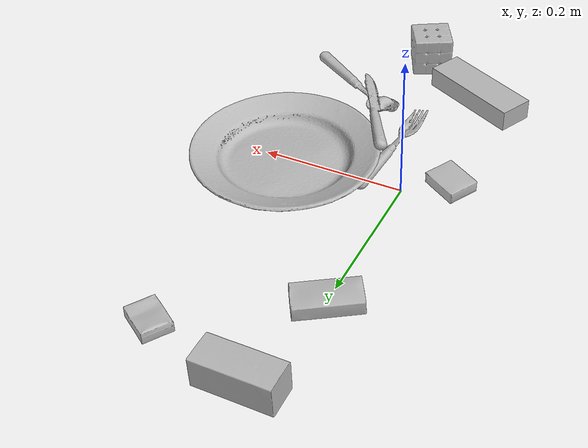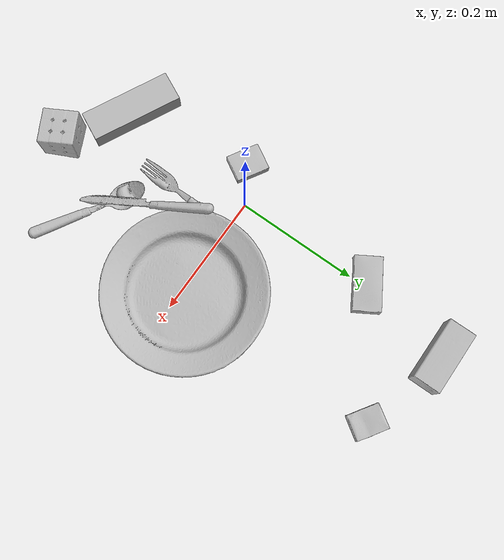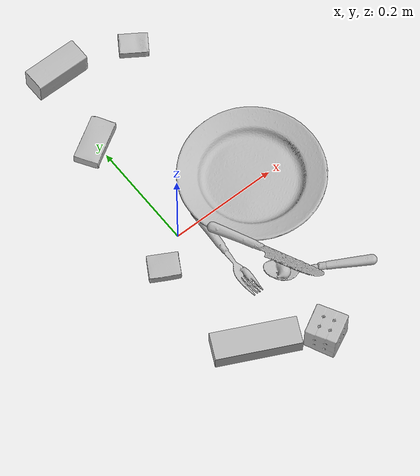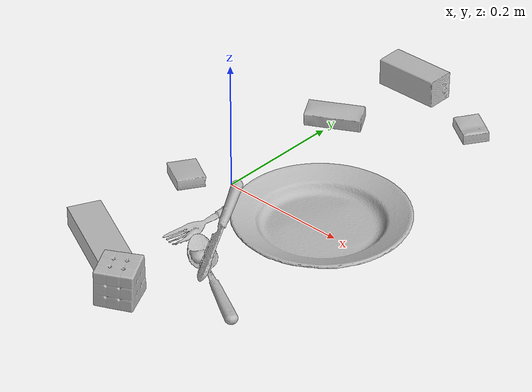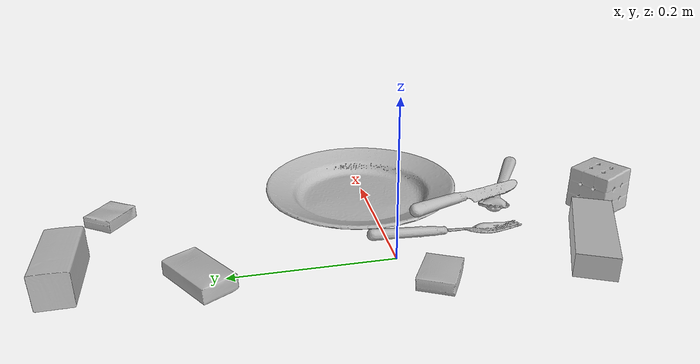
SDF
<sdf version="1.4">
  <world name="default">
    <light name="light1" type="point">
      <pose>0 0 1 0 0 0</pose>
      <diffuse>3 3 3 1</diffuse>
      <specular>3 3 3 1</specular>
    </light>
    <light name="light2" type="point">
      <pose>0 0.5 2 0 0 0</pose>
      <diffuse>1 1 1 1</diffuse>
      <specular>1 1 1 1</specular>
    </light>
    <light name="light3" type="point">
      <pose>0 0.5 2 0 0 0</pose>
      <diffuse>3 3 3 1</diffuse>
      <specular>3 3 3 1</specular>
    </light>
    <scene>
      <ambient>0.7 0.7 0.7</ambient>
    </scene>
    <model name="box11">
      <link name="link_box11">
        <collision name="default">
          <geometry>
            <mesh>
              <uri>model://pudding_box/collision_meshes/collision.obj</uri>
              <scale>0.5 0.5 0.5</scale>
            </mesh>
          </geometry>
          <surface>
            <friction>
              <ode>
                <mu>0.5</mu>
                <mu2>0.5</mu2>
              </ode>
            </friction>
          <contact>
        <ode>
            <max_vel>0</max_vel>
            <min_depth>0.0001</min_depth>
            <kp>1e8</kp>
        </ode>
    </contact></surface>
        </collision>
        <visual name="default">
          <geometry>
            <mesh>
              <uri>model://pudding_box/visual_meshes/visual.dae</uri>
              <scale>0.5 0.5 0.5</scale>
            </mesh>
          </geometry>
        </visual>
        <inertial>
          <mass>0.05641884729266167</mass>
          <pose>0.00024474109522998333 0.000403394311433658 -0.00025944141088984907 0.005213101771016666 -0.006603799659696515 0.020079828883224148</pose>
          <inertia>
            <ixx>1.5944652e-05</ixx>
            <iyy>1.0727675e-05</iyy>
            <izz>2.3546443e-05</izz>
            <ixy>0</ixy>
            <ixz>0</ixz>
            <iyz>0</iyz>
          </inertia>
        </inertial>
      </link>
      <pose>-0.057162683457136154 -0.0347733348608017 0.009862901642918587 0.022348634602566288 -0.011391211171166421 -2.096380508581624</pose>
    </model>
    <model name="box12">
      <link name="link_box12">
        <collision name="default">
          <geometry>
            <mesh>
              <uri>model://wood_block/collision_meshes/collision.obj</uri>
              <scale>0.5 0.5 0.5</scale>
            </mesh>
          </geometry>
          <surface>
            <friction>
              <ode>
                <mu>0.5</mu>
                <mu2>0.5</mu2>
              </ode>
            </friction>
          <contact>
        <ode>
            <max_vel>0</max_vel>
            <min_depth>0.0001</min_depth>
            <kp>1e8</kp>
        </ode>
    </contact></surface>
        </collision>
        <visual name="default">
          <geometry>
            <mesh>
              <uri>model://wood_block/visual_meshes/visual.dae</uri>
              <scale>0.5 0.5 0.5</scale>
            </mesh>
          </geometry>
        </visual>
        <inertial>
          <mass>0.1445801854133606</mass>
          <pose>-2.906657982748584e-06 -0.000285404734313488 0.00013204291462898254 -0.052208162951624955 -0.0051926954609686745 -0.006861377578377277</pose>
          <inertia>
            <ixx>4.836754e-05</ixx>
            <iyy>0.0001527931</iyy>
            <izz>0.00015222155</izz>
            <ixy>0</ixy>
            <ixz>0</ixz>
            <iyz>0</iyz>
          </inertia>
        </inertial>
      </link>
      <pose>0.027749139815568924 0.3779677450656891 0.022629259154200554 -0.005208541998128924 0.005718688295919271 0.004763820710444733</pose>
    </model>
    <model name="box13">
      <link name="link_box13">
        <collision name="default">
          <geometry>
            <mesh>
              <uri>model://sugar_box/collision_meshes/collision.obj</uri>
              <scale>0.5 0.5 0.5</scale>
            </mesh>
          </geometry>
          <surface>
            <friction>
              <ode>
                <mu>0.5</mu>
                <mu2>0.5</mu2>
              </ode>
            </friction>
          <contact>
        <ode>
            <max_vel>0</max_vel>
            <min_depth>0.0001</min_depth>
            <kp>1e8</kp>
        </ode>
    </contact></surface>
        </collision>
        <visual name="default">
          <geometry>
            <mesh>
              <uri>model://sugar_box/visual_meshes/visual.dae</uri>
              <scale>0.5 0.5 0.5</scale>
            </mesh>
          </geometry>
        </visual>
        <inertial>
          <mass>0.1187032163143158</mass>
          <pose>0.0005171863595023751 1.924554817378521e-05 -0.00018182402709499002 -0.0004046259512710581 0.0010506635216588768 0.002615378556274426</pose>
          <inertia>
            <ixx>2.4725794e-05</ixx>
            <iyy>7.991886e-05</iyy>
            <izz>9.567241e-05</izz>
            <ixy>0</ixy>
            <ixz>0</ixz>
            <iyz>0</iyz>
          </inertia>
        </inertial>
      </link>
      <pose>-0.0026438806671649218 0.22820059955120087 0.011399303562939167 0.0007755870134352239 -0.023432680814154817 -2.5996004404059216</pose>
    </model>
    <model name="box21">
      <link name="link_box21">
        <collision name="default">
          <geometry>
            <mesh>
              <uri>model://jenga/collision_meshes/collision.obj</uri>
              <scale>1.0 1.0 1.0</scale>
            </mesh>
          </geometry>
          <surface>
            <friction>
              <ode>
                <mu>0.5</mu>
                <mu2>0.5</mu2>
              </ode>
            </friction>
          <contact>
        <ode>
            <max_vel>0</max_vel>
            <min_depth>0.0001</min_depth>
            <kp>1e8</kp>
        </ode>
    </contact></surface>
        </collision>
        <visual name="default">
          <geometry>
            <mesh>
              <uri>model://jenga/visual_meshes/visual.dae</uri>
              <scale>1.0 1.0 1.0</scale>
            </mesh>
          </geometry>
        </visual>
        <inertial>
          <mass>0.20898528397083282</mass>
          <pose>-2.502855807051674e-07 -0.00010250010382151231 -4.092339804628864e-05 0.0 -7.342154049184251e-07 0.0</pose>
          <inertia>
            <ixx>5.7831294e-05</ixx>
            <iyy>0.0003918633</iyy>
            <izz>0.00041834736</izz>
            <ixy>0</ixy>
            <ixz>0</ixz>
            <iyz>0</iyz>
          </inertia>
        </inertial>
      </link>
      <pose>-0.022916341200470924 -0.2408991903066635 0.014999998733401299 1.3086436689622963e-09 2.0841869210462837e-09 2.6859910264099405</pose>
    </model>
    <model name="box22">
      <link name="link_box22">
        <collision name="default">
          <geometry>
            <mesh>
              <uri>model://rubiks_cube/collision_meshes/collision.obj</uri>
              <scale>1.0 1.0 1.0</scale>
            </mesh>
          </geometry>
          <surface>
            <friction>
              <ode>
                <mu>0.5</mu>
                <mu2>0.5</mu2>
              </ode>
            </friction>
          <contact>
        <ode>
            <max_vel>0</max_vel>
            <min_depth>0.0001</min_depth>
            <kp>1e8</kp>
        </ode>
    </contact></surface>
        </collision>
        <visual name="default">
          <geometry>
            <mesh>
              <uri>model://rubiks_cube/visual_meshes/visual.dae</uri>
              <scale>1.0 1.0 1.0</scale>
            </mesh>
          </geometry>
        </visual>
        <inertial>
          <mass>0.28698527812957764</mass>
          <pose>2.6721041649580002e-05 5.2569666877388954e-05 -7.2643156272533815e-06 -0.05467256881712973 -0.09813902151902686 -0.034455808755049874</pose>
          <inertia>
            <ixx>0.00015857864</ixx>
            <iyy>0.00015783912</iyy>
            <izz>0.00015989273</izz>
            <ixy>0</ixy>
            <ixz>0</ixz>
            <iyz>0</iyz>
          </inertia>
        </inertial>
      </link>
      <pose>0.07761682569980621 -0.30235645174980164 0.028678933158516884 -4.3426945518712235e-06 -1.7413100666557162e-06 2.0622815111454496</pose>
    </model>
    <model name="box23">
      <link name="link_box23">
        <collision name="default">
          <geometry>
            <mesh>
              <uri>model://cracker_box/collision_meshes/collision.obj</uri>
              <scale>0.25 0.25 0.25</scale>
            </mesh>
          </geometry>
          <surface>
            <friction>
              <ode>
                <mu>0.5</mu>
                <mu2>0.5</mu2>
              </ode>
            </friction>
          <contact>
        <ode>
            <max_vel>0</max_vel>
            <min_depth>0.0001</min_depth>
            <kp>1e8</kp>
        </ode>
    </contact></surface>
        </collision>
        <visual name="default">
          <geometry>
            <mesh>
              <uri>model://cracker_box/visual_meshes/visual.dae</uri>
              <scale>0.25 0.25 0.25</scale>
            </mesh>
          </geometry>
        </visual>
        <inertial>
          <mass>0.04468085244297981</mass>
          <pose>0.00023660414444748312 6.358561222441494e-05 -0.0004257383698131889 -0.0003162076226327385 -0.011106488669128663 0.0025467943033026423</pose>
          <inertia>
            <ixx>7.10301e-06</ixx>
            <iyy>1.1728463e-05</iyy>
            <izz>1.6737597e-05</izz>
            <ixy>0</ixy>
            <ixz>0</ixz>
            <iyz>0</iyz>
          </inertia>
        </inertial>
      </link>
      <pose>0.16897469758987427 0.3410801291465759 0.009096025489270687 -0.014050257012534852 -0.005016834626121049 2.5568941698209984</pose>
    </model>
    <model name="plate1">
      <link name="link_plate1">
        <collision name="default">
          <geometry>
            <mesh>
              <uri>model://plate/collision_meshes/collision.obj</uri>
              <scale>1.0 1.0 1.0</scale>
            </mesh>
          </geometry>
          <surface>
            <friction>
              <ode>
                <mu>0.5</mu>
                <mu2>0.5</mu2>
              </ode>
            </friction>
          <contact>
        <ode>
            <max_vel>0</max_vel>
            <min_depth>0.0001</min_depth>
            <kp>1e8</kp>
        </ode>
    </contact></surface>
        </collision>
        <visual name="default">
          <geometry>
            <mesh>
              <uri>model://plate/visual_meshes/visual.dae</uri>
              <scale>1.0 1.0 1.0</scale>
            </mesh>
          </geometry>
        </visual>
        <inertial>
          <mass>0.20184239745140076</mass>
          <pose>-0.0006044648471288383 0.00027825962752103806 -0.0010561983799561858 0.0022188105697194356 -0.003225466439192432 0.4526020757977656</pose>
          <inertia>
            <ixx>0.00094422296</ixx>
            <iyy>0.00093519164</iyy>
            <izz>0.0018467589</izz>
            <ixy>0</ixy>
            <ixz>0</ixz>
            <iyz>0</iyz>
          </inertia>
        </inertial>
      </link>
      <pose>0.1684947907924652 0.00764953950420022 0.013733004219830036 -7.618007914444629e-07 -3.360490831180868e-06 -2.099907913282408</pose>
    </model>
    <model name="silverware1">
      <link name="link_silverware1">
        <collision name="default">
          <geometry>
            <mesh>
              <uri>model://fork/collision_meshes/collision.obj</uri>
              <scale>1.0 1.0 1.0</scale>
            </mesh>
          </geometry>
          <surface>
            <friction>
              <ode>
                <mu>0.5</mu>
                <mu2>0.5</mu2>
              </ode>
            </friction>
          <contact>
        <ode>
            <max_vel>0</max_vel>
            <min_depth>0.0001</min_depth>
            <kp>1e8</kp>
        </ode>
    </contact></surface>
        </collision>
        <visual name="default">
          <geometry>
            <mesh>
              <uri>model://fork/visual_meshes/visual.dae</uri>
              <scale>1.0 1.0 1.0</scale>
            </mesh>
          </geometry>
        </visual>
        <inertial>
          <mass>0.03151825815439224</mass>
          <pose>-0.029570046812295914 0.00046588233090005815 0.0003218861820641905 -0.013550990610422763 -0.010977834578584837 0.014453900606944525</pose>
          <inertia>
            <ixx>1.1048933e-06</ixx>
            <iyy>8.2285114e-05</iyy>
            <izz>8.2779305e-05</izz>
            <ixy>0</ixy>
            <ixz>0</ixz>
            <iyz>0</iyz>
          </inertia>
        </inertial>
      </link>
      <pose>0.04469399154186249 -0.07389622926712036 0.005678873043507338 -0.17200171300278552 0.02624474524754963 -1.644108369048154</pose>
    </model>
    <model name="silverware2">
      <link name="link_silverware2">
        <collision name="default">
          <geometry>
            <mesh>
              <uri>model://spoon/collision_meshes/collision.obj</uri>
              <scale>1.0 1.0 1.0</scale>
            </mesh>
          </geometry>
          <surface>
            <friction>
              <ode>
                <mu>0.5</mu>
                <mu2>0.5</mu2>
              </ode>
            </friction>
          <contact>
        <ode>
            <max_vel>0</max_vel>
            <min_depth>0.0001</min_depth>
            <kp>1e8</kp>
        </ode>
    </contact></surface>
        </collision>
        <visual name="default">
          <geometry>
            <mesh>
              <uri>model://spoon/visual_meshes/visual.dae</uri>
              <scale>1.0 1.0 1.0</scale>
            </mesh>
          </geometry>
        </visual>
        <inertial>
          <mass>0.04083608463406563</mass>
          <pose>-0.005526324734091759 -0.001603417913429439 -0.0007271658978424966 0.03521537575369321 -0.03906582415196765 0.006150608891198343</pose>
          <inertia>
            <ixx>2.2713682e-06</ixx>
            <iyy>0.0001553799</iyy>
            <izz>0.0001565001</izz>
            <ixy>0</ixy>
            <ixz>0</ixz>
            <iyz>0</iyz>
          </inertia>
        </inertial>
      </link>
      <pose>0.1515897959470749 -0.19694501161575317 0.008385267108678818 0.0067350993327269576 0.026893007407656756 2.5921764180851716</pose>
    </model>
    <model name="silverware3">
      <link name="link_silverware3">
        <collision name="default">
          <geometry>
            <mesh>
              <uri>model://knife/collision_meshes/collision.obj</uri>
              <scale>1.0 1.0 1.0</scale>
            </mesh>
          </geometry>
          <surface>
            <friction>
              <ode>
                <mu>0.5</mu>
                <mu2>0.5</mu2>
              </ode>
            </friction>
          <contact>
        <ode>
            <max_vel>0</max_vel>
            <min_depth>0.0001</min_depth>
            <kp>1e8</kp>
        </ode>
    </contact></surface>
        </collision>
        <visual name="default">
          <geometry>
            <mesh>
              <uri>model://knife/visual_meshes/visual.dae</uri>
              <scale>1.0 1.0 1.0</scale>
            </mesh>
          </geometry>
        </visual>
        <inertial>
          <mass>0.024411516264081</mass>
          <pose>-0.023785248398780823 0.0015275123296305537 5.062021955382079e-05 0.07305335097392199 0.01724841144103926 -0.007409823891069756</pose>
          <inertia>
            <ixx>6.9289786e-07</ixx>
            <iyy>9.37851e-05</iyy>
            <izz>9.400826e-05</izz>
            <ixy>0</ixy>
            <ixz>0</ixz>
            <iyz>0</iyz>
          </inertia>
        </inertial>
      </link>
      <pose>0.09234308451414108 -0.12288869172334671 0.02556558884680271 0.5331006016142632 0.11626945033524365 -1.0720355291234267</pose>
    </model>
  <physics type="ode">
      <max_contacts>50</max_contacts>
      <ode>
        <solver>
          <type>quick</type>
          <iters>75</iters>
        </solver>
        <constraints>
          <contact_max_correcting_vel>0</contact_max_correcting_vel>
          <contact_surface_layer>0</contact_surface_layer>
        </constraints>
      </ode>
    </physics></world>
</sdf>
